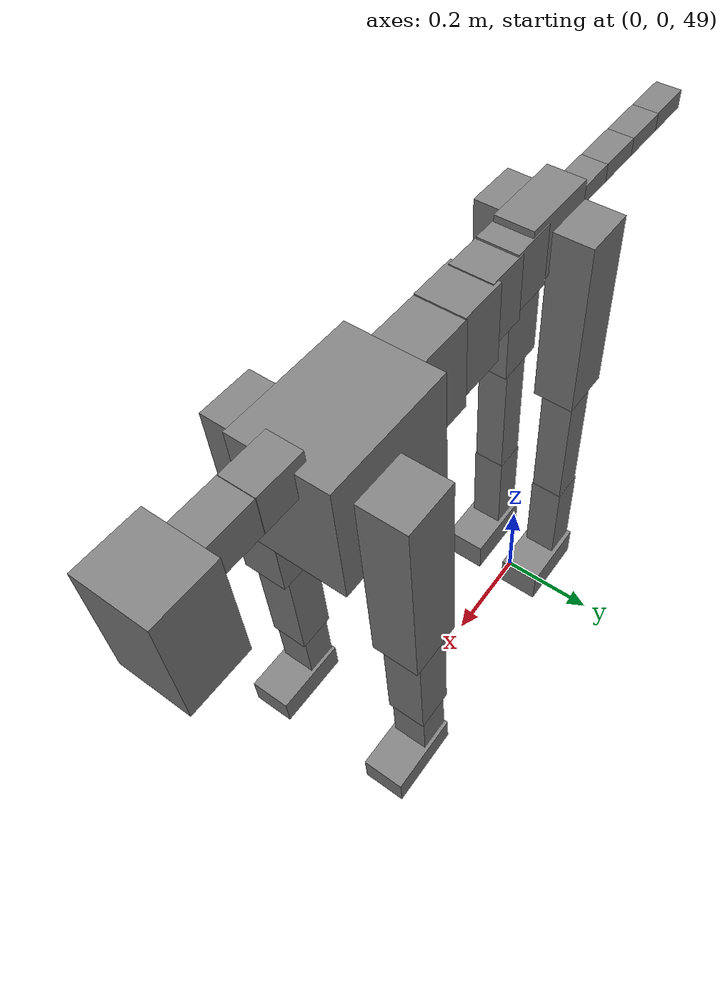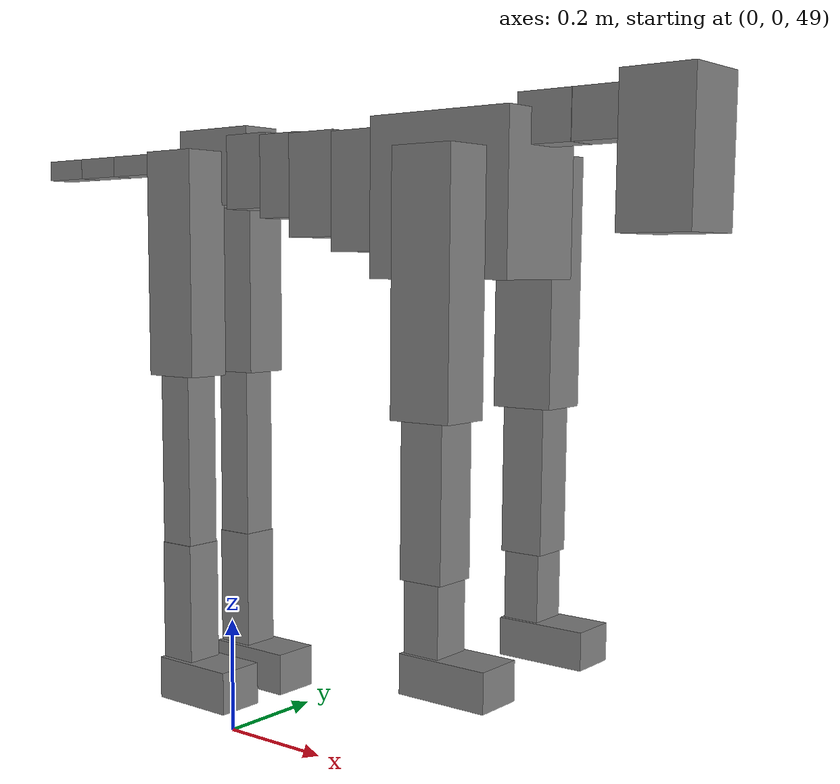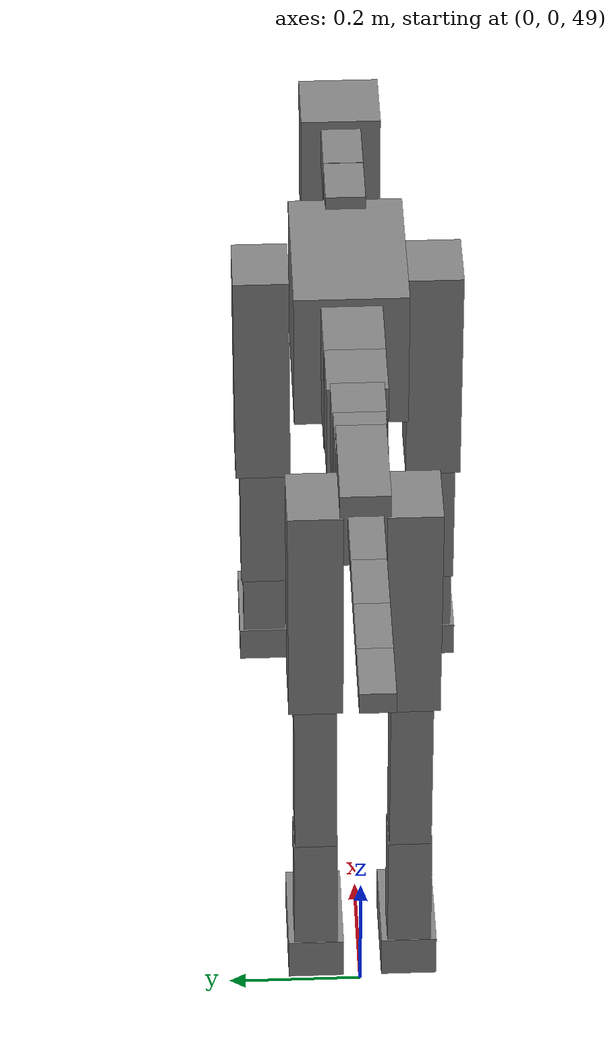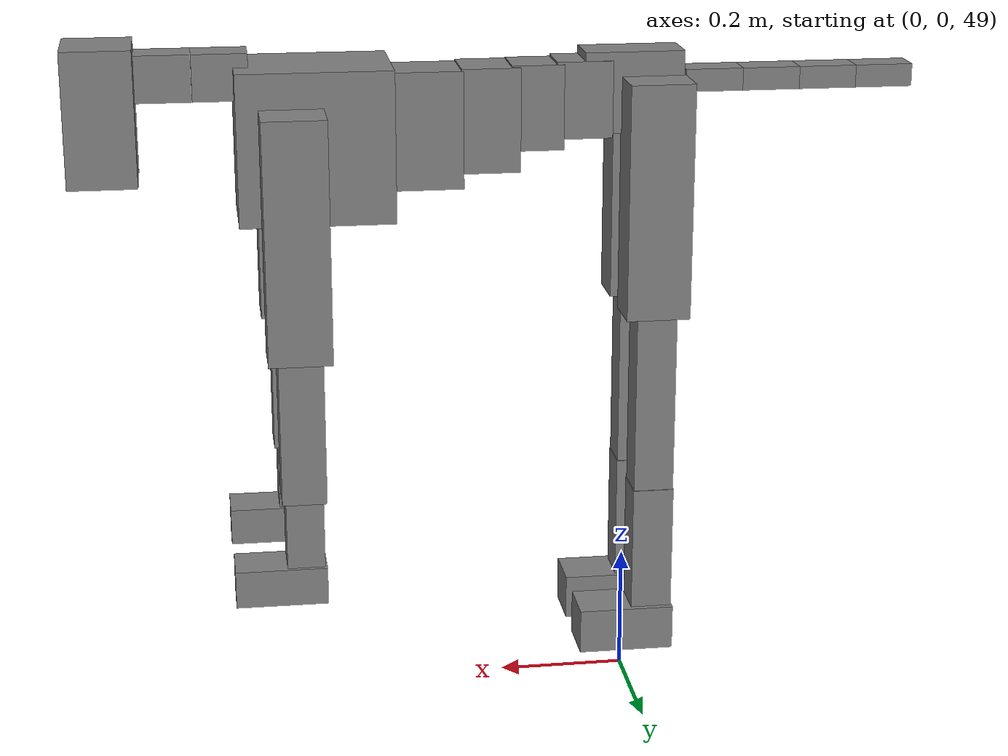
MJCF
<mujoco model="dog">

    <default>
        <joint armature="0.02" stiffness="1" damping="0.2" limited="true" />
        <geom condim="3" friction="1 0.05 0.05" margin="0.01" />
        <motor ctrllimited="true" ctrlrange="-1.0 1.0" forcelimited="true" gear="50" />
    </default>

    <compiler inertiafromgeom="true" angle="radian" />

    <option timestep="0.016" iterations="50" tolerance="1e-10" solver="Newton" jacobian="dense" cone="pyramidal" />

    <size nconmax="20000" njmax="60000" nstack="5000000" />
    <visual>
        <map force="0.1" zfar="30" />
        <rgba haze="0.15 0.25 0.35 1" />
        <quality shadowsize="2048" />
        <global offwidth="800" offheight="800" />
    </visual>

    <asset>
        <texture type="skybox" builtin="gradient" rgb1="0.3 0.5 0.7" rgb2="0 0 0" width="512" height="512" />
        <texture name="texplane" type="2d" builtin="checker" rgb1=".2 .3 .4" rgb2=".1 0.15 0.2" width="512" height="512" mark="cross" markrgb=".8 .8 .8" />
        <texture name="texgeom" type="cube" builtin="flat" mark="cross" width="127" height="1278" rgb1="0.8 0.6 0.4" rgb2="0.8 0.6 0.4" markrgb="1 1 1" random="0.01" />

        <material name="matplane" reflectance="0.3" texture="texplane" texrepeat="1 1" texuniform="true" />
        <material name="matgeom" texture="texgeom" texuniform="true" rgba="0.8 0.6 .4 1" />
    </asset>

    <worldbody>
        <geom name="floor" pos="0 0 0" size="0 0 .25" type="plane" material="matplane" condim="3" />

        <light directional="false" diffuse=".2 .2 .2" specular="0 0 0" pos="0 0 5" dir="0 0 -1" castshadow="false" />
        <light mode="targetbodycom" target="torso" directional="false" diffuse=".8 .8 .8" specular="0.3 0.3 0.3" pos="0 0 4.0" dir="0 0 -1" />

        <body name="root" pos="0 0 50">
            <freejoint name="root_1" />
            <geom type="box" pos="0 0 -0.02" size="0.0774  0.0358  0.063" density="2030" />

            <body name="spine1" pos="0.054 0 0">
                <joint name="spine1_y" axis="0 1 0" range="0 0.7" limited="true" />
                <geom type="box" pos="0.02375 0 -0.03" size="0.04375  0.0375  0.05985" density="2030" />

                <body name="spine2" pos="0.0612 0 0">
                    <joint name="spine2_y" axis="0 1 0" range="-0.15 0.15" limited="true" />
                    <geom type="box" pos="0.03555  0  -0.04" size="0.04055  0.039  0.06615" density="2030" />

                    <body name="spine3" pos="0.0730 0 0">
                        <joint name="spine3_y" axis="0 1 0" range="-0.15 0.15" limited="true" />
                        <geom type="box" pos="0.03555  0  -0.057" size="0.04555  0.0445  0.081" density="2030" />

                        <body name="spine4" pos="0.0780 0 0">
                            <joint name="spine4_y" axis="0 1 0" range="-0.15 0.15" limited="true" />
                            <geom type="box" pos="0.05265  0  -0.07" size="0.05265  0.045  0.09135" density="2030" />

                            <body name="torso" pos="0.1082 0 0">
                                <joint name="torso_y" axis="0 1 0" range="-0.15 0.15" limited="true" />
                                <geom type="box" pos="0.11925  0  -0.085" size="0.11925  0.085  0.11745" density="2030" />

                                <body name="neck1" pos="0.2160  0   0.0180">
                                    <joint name="neck1_y" axis="0 1 0" range="-1.2  -1" limited="true" />
                                    <geom type="box" pos="0.0423  0  0" size="0.0423  0.03  0.036" density="2325" />

                                    <body name="neck2" pos="0.0853  0  0">
                                        <joint name="neck2_y" axis="0 1 0" range="0.1  0" limited="true" />
                                        <geom type="box" pos="0.0423  0  0" size="0.0423  0.03  0.036" density="2325" />

                                        <body name="head" pos="0.0853  0  0">
                                            <joint name="head_y" axis="0 1 0" range="-0.3  -0.2" limited="true" />
                                            <geom type="box" pos="0.0531  0  -0.055" size="0.0531  0.06  0.1044" density="4030" />

                                        </body>
                                    </body>
                                </body>

                                <body name="front_shoulder" pos="0.156  0   -0.0480">
                                    <joint name="front_shoulder_y" axis="0 1 0" range="-1 1.5" limited="true" />
                                    <geom type="box" pos="0 0.13 -0.1610" size="0.0489  0.0418  0.1877" density="1158" />
                                    <geom type="box" pos="0 -0.13 -0.1610" size="0.0489  0.0418  0.1877" density="1158" />

                                    <body name="front_elbow" pos="0  0  -0.3221">
                                        <joint name="front_elbow_y" axis="0 1 0" range="-2 0" limited="true" />
                                        <geom type="box" pos="0 0.13 -0.1259" size="0.0345  0.0353  0.1259" density="1081" />
                                        <geom type="box" pos="0 -0.13 -0.1259" size="0.0345  0.0353  0.1259" density="1081" />

                                        <body name="front_wrist" pos="0  0  -0.2519">
                                            <joint name="front_wrist_y" axis="0 1 0" range="-0.2 0" limited="true" />
                                            <geom type="box" pos="0 0.13 -0.0602" size="0.0292  0.0324  0.0734" density="1664" />
                                            <geom type="box" pos="0 -0.13 -0.0602" size="0.0292  0.0324  0.0734" density="1664" />

                                            <body name="front_finger_end" pos="0  0  -0.1205">
                                                <joint name="front_finger_y" axis="0 1 0" range="-0.4 1" limited="true" />
                                                <geom type="box" pos="0.0389  0.13  -0.0146" size="0.0713  0.0389  0.0296" density="1515" />
                                                <geom type="box" pos="0.0389  -0.13  -0.0146" size="0.0713  0.0389  0.0296" density="1515" />

                                            </body>

                                        </body>
                                    </body>
                                </body>

                            </body>
                        </body>
                    </body>
                </body>
            </body>

            <body name="back_hip" pos="-0.03 0 -0.018">
                <joint name="back_hip_y" axis="0 1 0" range="-1.5 0.3" limited="true" />
                <geom type="box" pos="0 0.07 -0.1624" size="0.0501  0.0393  0.1852" density="1154" />
                <geom type="box" pos="0 -0.07 -0.1624" size="0.0501  0.0393  0.1852" density="1154" />

                <body name="back_knee" pos="0  0  -0.3247">
                    <joint name="back_knee_y" axis="0 1 0" range="0 2.8" limited="true" />
                    <geom type="box" pos="0 0.07 -0.1603" size="0.0316  0.0311  0.1758" density="1227" />
                    <geom type="box" pos="0 -0.07 -0.1603" size="0.0316  0.0311  0.1758" density="1227" />

                    <body name="back_ankle" pos="0  0  -0.3206">
                        <joint name="back_ankle_y" axis="0 1 0" range="-2.2 0" limited="true" />
                        <geom type="box" pos="0 0.07 -0.1027" size="0.0325  0.0325  0.1140" density="1284" />
                        <geom type="box" pos="0 -0.07 -0.1027" size="0.0325  0.0325  0.1140" density="1284" />

                        <body name="back_toe_end" pos="0  0  -0.2055">
                            <joint name="back_toe_y" axis="0 1 0" range="-0.4 1" limited="true" />
                            <geom type="box" pos="0.0414  0.07  -0.0208" size="0.0758  0.0414  0.0358" density="1515" />
                            <geom type="box" pos="0.0414  -0.07  -0.0208" size="0.0758  0.0414  0.0358" density="1515" />

                        </body>
                    </body>
                </body>
            </body>

            <body name="tail1" pos="-0.074 0 -0.006">
                <joint name="tail1_y" axis="0 1 0" range="-0.2 0.2" limited="true" />
                <geom type="box" pos="-0.0536  0  0" size="0.045  0.025  0.0175" density="1587" />

                <body name="tail2" pos="-0.09 0 0">
                    <joint name="tail2_y" axis="0 1 0" range="-0.2 0.2" limited="true" />
                    <geom type="box" pos="-0.0536  0  0" size="0.045  0.025  0.0175" density="1587" />

                    <body name="tail3" pos="-0.09 0 0">
                        <joint name="tail3_y" axis="0 1 0" range="-0.2 0.2" limited="true" />
                        <geom type="box" pos="-0.0536  0  0" size="0.045  0.025  0.0175" density="1587" />

                        <body name="tail4" pos="-0.09 0 0">
                            <joint name="tail4_y" axis="0 1 0" range="-0.2 0.2" limited="true" />
                            <geom type="box" pos="-0.0536  0  0" size="0.045  0.025  0.0175" density="1587" />

                        </body>
                    </body>
                </body>
            </body>
        </body>
    </worldbody>

    <actuator>
        <motor joint="spine1_y" forcerange="-150 150     " />
        <motor joint="spine2_y" forcerange="-150 150     " />
        <motor joint="spine3_y" forcerange="-150 150     " />
        <motor joint="spine4_y" forcerange="-150 150     " />
        <motor joint="torso_y" forcerange="-150 150     " />
        <motor joint="neck1_y" forcerange="-100 100       " />
        <motor joint="neck2_y" forcerange="-100 100       " />
        <motor joint="head_y" forcerange="-150 150       " />
        <motor joint="front_shoulder_y" forcerange="-179.53 199.19" />
        <motor joint="front_elbow_y" forcerange="-171.78 184.87" />
        <motor joint="front_wrist_y" forcerange="-139.93 119.48" />
        <motor joint="front_finger_y" forcerange="-96.94 70.55" />
        <motor joint="back_hip_y" forcerange="-329.92 394.46" />
        <motor joint="back_knee_y" forcerange="-338.84 313.55" />
        <motor joint="back_angle_y" forcerange="-198.63 222.03" />
        <motor joint="back_toe_y" forcerange="-115.29 135.52" />
        <motor joint="tail1_y" forcerange="-50 50     " />
        <motor joint="tail2_y" forcerange="-50 50     " />
        <motor joint="tail3_y" forcerange="-50 50     " />
        <motor joint="tail4_y" forcerange="-50 50     " />
    </actuator>
</mujoco>
